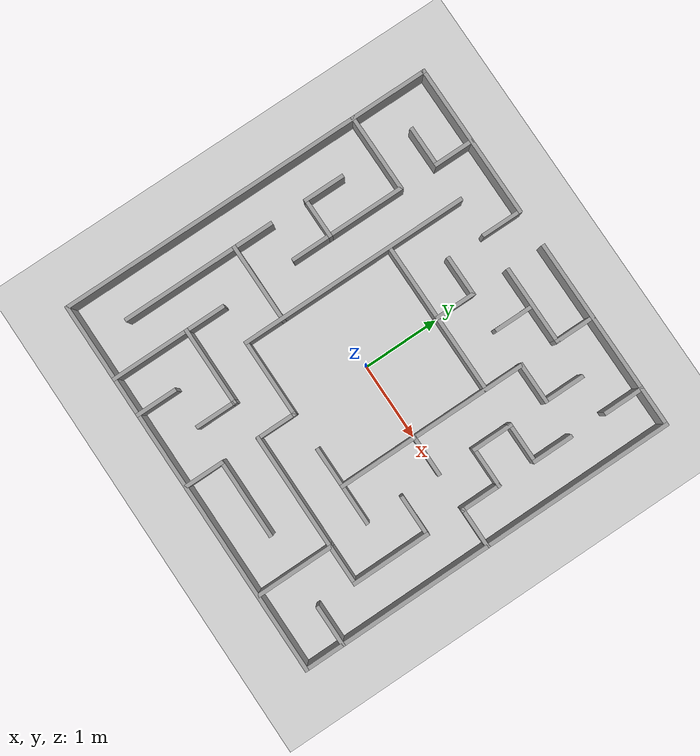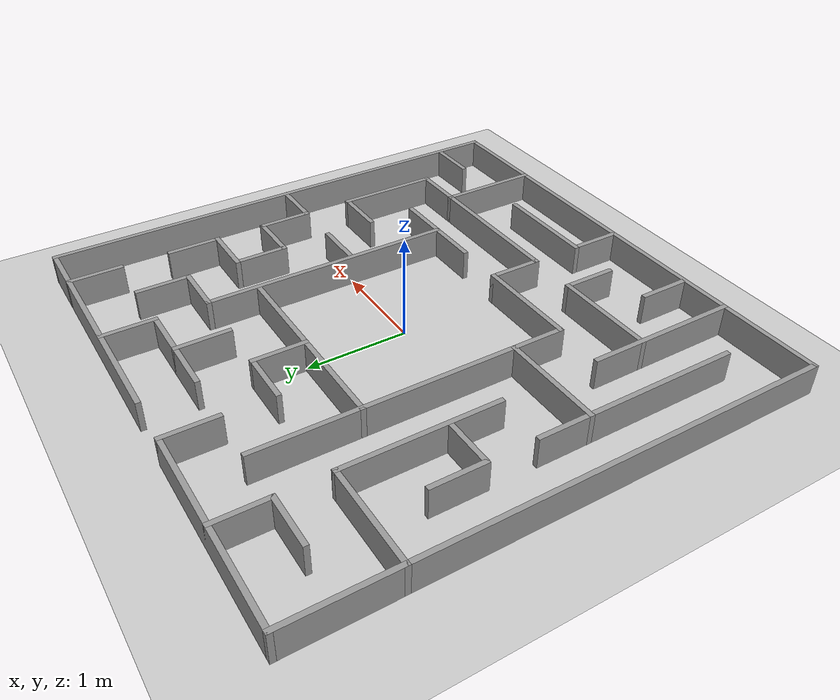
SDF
<sdf version="1.4">
  <world name="default">

    <scene>
      <ambient>0.4 0.4 0.4 1</ambient>
      <background>0.7 0.7 0.7 1</background>
      <shadows>true</shadows>
    </scene>

    <!-- A global light source -->
    <include>
      <uri>model://sun</uri>
    </include>

    <!-- A ground plane -->
    <include>
      <uri>model://ground_plane</uri>
    </include>

    <!-- Maze 2 v1 -->
    <include>
      <uri>model://turtlebot3_maze_2</uri>
    </include>

    <physics type="ode">
      <real_time_update_rate>1000.0</real_time_update_rate>
      <max_step_size>0.001</max_step_size>
      <real_time_factor>1</real_time_factor>
      <ode>
        <solver>
          <type>quick</type>
          <iters>150</iters>
          <precon_iters>0</precon_iters>
          <sor>1.400000</sor>
          <use_dynamic_moi_rescaling>1</use_dynamic_moi_rescaling>
        </solver>
        <constraints>
          <cfm>0.00001</cfm>
          <erp>0.2</erp>
          <contact_max_correcting_vel>2000.000000</contact_max_correcting_vel>
          <contact_surface_layer>0.01000</contact_surface_layer>
        </constraints>
      </ode>
    </physics>
  </world>

</sdf>

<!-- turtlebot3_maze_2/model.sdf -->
<sdf version='1.7'>
  <model name='turtlebot3_maze_2'>
    <pose>0 0 0 0 -0 0</pose>
    <link name='Wall_101'>
      <collision name='Wall_101_Collision'>
        <geometry>
          <box>
            <size>0.55 0.05 0.3</size>
          </box>
        </geometry>
        <pose>0 0 0.15 0 -0 0</pose>
      </collision>
      <visual name='Wall_101_Visual'>
        <pose>0 0 0.15 0 -0 0</pose>
        <geometry>
          <box>
            <size>0.55 0.05 0.3</size>
          </box>
        </geometry>
        <material>
          <script>
            <uri>file://media/materials/scripts/gazebo.material</uri>
            <name>Gazebo/Grey</name>
          </script>
          <ambient>1 1 1 1</ambient>
        </material>
        <meta>
          <layer>0</layer>
        </meta>
      </visual>
      <pose>2.25 -2 0 0 -0 0</pose>
    </link>
    <link name='Wall_103'>
      <collision name='Wall_103_Collision'>
        <geometry>
          <box>
            <size>1.05 0.05 0.3</size>
          </box>
        </geometry>
        <pose>0 0 0.15 0 -0 0</pose>
      </collision>
      <visual name='Wall_103_Visual'>
        <pose>0 0 0.15 0 -0 0</pose>
        <geometry>
          <box>
            <size>1.05 0.05 0.3</size>
          </box>
        </geometry>
        <material>
          <script>
            <uri>file://media/materials/scripts/gazebo.material</uri>
            <name>Gazebo/Grey</name>
          </script>
          <ambient>1 1 1 1</ambient>
        </material>
        <meta>
          <layer>0</layer>
        </meta>
      </visual>
      <pose>1.5 -2 0 0 -0 -1.5708</pose>
    </link>
    <link name='Wall_105'>
      <collision name='Wall_105_Collision'>
        <geometry>
          <box>
            <size>1.05 0.05 0.3</size>
          </box>
        </geometry>
        <pose>0 0 0.15 0 -0 0</pose>
      </collision>
      <visual name='Wall_105_Visual'>
        <pose>0 0 0.15 0 -0 0</pose>
        <geometry>
          <box>
            <size>1.05 0.05 0.3</size>
          </box>
        </geometry>
        <material>
          <script>
            <uri>file://media/materials/scripts/gazebo.material</uri>
            <name>Gazebo/Grey</name>
          </script>
          <ambient>1 1 1 1</ambient>
        </material>
        <meta>
          <layer>0</layer>
        </meta>
      </visual>
      <pose>0.5 -2 0 0 -0 3.14159</pose>
    </link>
    <link name='Wall_106'>
      <collision name='Wall_106_Collision'>
        <geometry>
          <box>
            <size>0.55 0.05 0.3</size>
          </box>
        </geometry>
        <pose>0 0 0.15 0 -0 0</pose>
      </collision>
      <visual name='Wall_106_Visual'>
        <pose>0 0 0.15 0 -0 0</pose>
        <geometry>
          <box>
            <size>0.55 0.05 0.3</size>
          </box>
        </geometry>
        <material>
          <script>
            <uri>file://media/materials/scripts/gazebo.material</uri>
            <name>Gazebo/Grey</name>
          </script>
          <ambient>1 1 1 1</ambient>
        </material>
        <meta>
          <layer>0</layer>
        </meta>
      </visual>
      <pose>0 -2.25 0 0 -0 -1.5708</pose>
    </link>
    <link name='Wall_108'>
      <collision name='Wall_108_Collision'>
        <geometry>
          <box>
            <size>0.55 0.05 0.3</size>
          </box>
        </geometry>
        <pose>0 0 0.15 0 -0 0</pose>
      </collision>
      <visual name='Wall_108_Visual'>
        <pose>0 0 0.15 0 -0 0</pose>
        <geometry>
          <box>
            <size>0.55 0.05 0.3</size>
          </box>
        </geometry>
        <material>
          <script>
            <uri>file://media/materials/scripts/gazebo.material</uri>
            <name>Gazebo/Grey</name>
          </script>
          <ambient>1 1 1 1</ambient>
        </material>
        <meta>
          <layer>0</layer>
        </meta>
      </visual>
      <pose>-1 -2.25 0 0 -0 -1.5708</pose>
    </link>
    <link name='Wall_110'>
      <collision name='Wall_110_Collision'>
        <geometry>
          <box>
            <size>0.55 0.05 0.3</size>
          </box>
        </geometry>
        <pose>0 0 0.15 0 -0 0</pose>
      </collision>
      <visual name='Wall_110_Visual'>
        <pose>0 0 0.15 0 -0 0</pose>
        <geometry>
          <box>
            <size>0.55 0.05 0.3</size>
          </box>
        </geometry>
        <material>
          <script>
            <uri>file://media/materials/scripts/gazebo.material</uri>
            <name>Gazebo/Grey</name>
          </script>
          <ambient>1 1 1 1</ambient>
        </material>
        <meta>
          <layer>0</layer>
        </meta>
      </visual>
      <pose>-0.5 -1.75 0 0 -0 1.5708</pose>
    </link>
    <link name='Wall_111'>
      <collision name='Wall_111_Collision'>
        <geometry>
          <box>
            <size>1.05 0.05 0.3</size>
          </box>
        </geometry>
        <pose>0 0 0.15 0 -0 0</pose>
      </collision>
      <visual name='Wall_111_Visual'>
        <pose>0 0 0.15 0 -0 0</pose>
        <geometry>
          <box>
            <size>1.05 0.05 0.3</size>
          </box>
        </geometry>
        <material>
          <script>
            <uri>file://media/materials/scripts/gazebo.material</uri>
            <name>Gazebo/Grey</name>
          </script>
          <ambient>1 1 1 1</ambient>
        </material>
        <meta>
          <layer>0</layer>
        </meta>
      </visual>
      <pose>-1 -1.5 0 0 -0 3.14159</pose>
    </link>
    <link name='Wall_113'>
      <collision name='Wall_113_Collision'>
        <geometry>
          <box>
            <size>1.55 0.05 0.3</size>
          </box>
        </geometry>
        <pose>0 0 0.15 0 -0 0</pose>
      </collision>
      <visual name='Wall_113_Visual'>
        <pose>0 0 0.15 0 -0 0</pose>
        <geometry>
          <box>
            <size>1.55 0.05 0.3</size>
          </box>
        </geometry>
        <material>
          <script>
            <uri>file://media/materials/scripts/gazebo.material</uri>
            <name>Gazebo/Grey</name>
          </script>
          <ambient>1 1 1 1</ambient>
        </material>
        <meta>
          <layer>0</layer>
        </meta>
      </visual>
      <pose>-1.5 -1.75 0 0 -0 -1.5708</pose>
    </link>
    <link name='Wall_115'>
      <collision name='Wall_115_Collision'>
        <geometry>
          <box>
            <size>2.05 0.05 0.3</size>
          </box>
        </geometry>
        <pose>0 0 0.15 0 -0 0</pose>
      </collision>
      <visual name='Wall_115_Visual'>
        <pose>0 0 0.15 0 -0 0</pose>
        <geometry>
          <box>
            <size>2.05 0.05 0.3</size>
          </box>
        </geometry>
        <material>
          <script>
            <uri>file://media/materials/scripts/gazebo.material</uri>
            <name>Gazebo/Grey</name>
          </script>
          <ambient>1 1 1 1</ambient>
        </material>
        <meta>
          <layer>0</layer>
        </meta>
      </visual>
      <pose>-2 -1 0 0 -0 -1.5708</pose>
    </link>
    <link name='Wall_117'>
      <collision name='Wall_117_Collision'>
        <geometry>
          <box>
            <size>1.05 0.05 0.3</size>
          </box>
        </geometry>
        <pose>0 0 0.15 0 -0 0</pose>
      </collision>
      <visual name='Wall_117_Visual'>
        <pose>0 0 0.15 0 -0 0</pose>
        <geometry>
          <box>
            <size>1.05 0.05 0.3</size>
          </box>
        </geometry>
        <material>
          <script>
            <uri>file://media/materials/scripts/gazebo.material</uri>
            <name>Gazebo/Grey</name>
          </script>
          <ambient>1 1 1 1</ambient>
        </material>
        <meta>
          <layer>0</layer>
        </meta>
      </visual>
      <pose>-2 1.5 0 0 -0 0</pose>
    </link>
    <link name='Wall_118'>
      <collision name='Wall_118_Collision'>
        <geometry>
          <box>
            <size>1.55 0.05 0.3</size>
          </box>
        </geometry>
        <pose>0 0 0.15 0 -0 0</pose>
      </collision>
      <visual name='Wall_118_Visual'>
        <pose>0 0 0.15 0 -0 0</pose>
        <geometry>
          <box>
            <size>1.55 0.05 0.3</size>
          </box>
        </geometry>
        <material>
          <script>
            <uri>file://media/materials/scripts/gazebo.material</uri>
            <name>Gazebo/Grey</name>
          </script>
          <ambient>1 1 1 1</ambient>
        </material>
        <meta>
          <layer>0</layer>
        </meta>
      </visual>
      <pose>-1.5 0.75 0 0 -0 -1.5708</pose>
    </link>
    <link name='Wall_120'>
      <collision name='Wall_120_Collision'>
        <geometry>
          <box>
            <size>0.55 0.05 0.3</size>
          </box>
        </geometry>
        <pose>0 0 0.15 0 -0 0</pose>
      </collision>
      <visual name='Wall_120_Visual'>
        <pose>0 0 0.15 0 -0 0</pose>
        <geometry>
          <box>
            <size>0.55 0.05 0.3</size>
          </box>
        </geometry>
        <material>
          <script>
            <uri>file://media/materials/scripts/gazebo.material</uri>
            <name>Gazebo/Grey</name>
          </script>
          <ambient>1 1 1 1</ambient>
        </material>
        <meta>
          <layer>0</layer>
        </meta>
      </visual>
      <pose>-2 0.75 0 0 -0 -1.5708</pose>
    </link>
    <link name='Wall_121'>
      <collision name='Wall_121_Collision'>
        <geometry>
          <box>
            <size>0.55 0.05 0.3</size>
          </box>
        </geometry>
        <pose>0 0 0.15 0 -0 0</pose>
      </collision>
      <visual name='Wall_121_Visual'>
        <pose>0 0 0.15 0 -0 0</pose>
        <geometry>
          <box>
            <size>0.55 0.05 0.3</size>
          </box>
        </geometry>
        <material>
          <script>
            <uri>file://media/materials/scripts/gazebo.material</uri>
            <name>Gazebo/Grey</name>
          </script>
          <ambient>1 1 1 1</ambient>
        </material>
        <meta>
          <layer>0</layer>
        </meta>
      </visual>
      <pose>-1.75 0.5 0 0 -0 0</pose>
    </link>
    <link name='Wall_123'>
      <collision name='Wall_123_Collision'>
        <geometry>
          <box>
            <size>1.05 0.05 0.3</size>
          </box>
        </geometry>
        <pose>0 0 0.15 0 -0 0</pose>
      </collision>
      <visual name='Wall_123_Visual'>
        <pose>0 0 0.15 0 -0 0</pose>
        <geometry>
          <box>
            <size>1.05 0.05 0.3</size>
          </box>
        </geometry>
        <material>
          <script>
            <uri>file://media/materials/scripts/gazebo.material</uri>
            <name>Gazebo/Grey</name>
          </script>
          <ambient>1 1 1 1</ambient>
        </material>
        <meta>
          <layer>0</layer>
        </meta>
      </visual>
      <pose>0.5 2 0 0 -0 0</pose>
    </link>
    <link name='Wall_124'>
      <collision name='Wall_124_Collision'>
        <geometry>
          <box>
            <size>0.55 0.05 0.3</size>
          </box>
        </geometry>
        <pose>0 0 0.15 0 -0 0</pose>
      </collision>
      <visual name='Wall_124_Visual'>
        <pose>0 0 0.15 0 -0 0</pose>
        <geometry>
          <box>
            <size>0.55 0.05 0.3</size>
          </box>
        </geometry>
        <material>
          <script>
            <uri>file://media/materials/scripts/gazebo.material</uri>
            <name>Gazebo/Grey</name>
          </script>
          <ambient>1 1 1 1</ambient>
        </material>
        <meta>
          <layer>0</layer>
        </meta>
      </visual>
      <pose>1 2.25 0 0 -0 1.5708</pose>
    </link>
    <link name='Wall_126'>
      <collision name='Wall_126_Collision'>
        <geometry>
          <box>
            <size>0.55 0.05 0.3</size>
          </box>
        </geometry>
        <pose>0 0 0.15 0 -0 0</pose>
      </collision>
      <visual name='Wall_126_Visual'>
        <pose>0 0 0.15 0 -0 0</pose>
        <geometry>
          <box>
            <size>0.55 0.05 0.3</size>
          </box>
        </geometry>
        <material>
          <script>
            <uri>file://media/materials/scripts/gazebo.material</uri>
            <name>Gazebo/Grey</name>
          </script>
          <ambient>1 1 1 1</ambient>
        </material>
        <meta>
          <layer>0</layer>
        </meta>
      </visual>
      <pose>0.5 1.75 0 0 -0 1.5708</pose>
    </link>
    <link name='Wall_128'>
      <collision name='Wall_128_Collision'>
        <geometry>
          <box>
            <size>1.05 0.05 0.3</size>
          </box>
        </geometry>
        <pose>0 0 0.15 0 -0 0</pose>
      </collision>
      <visual name='Wall_128_Visual'>
        <pose>0 0 0.15 0 -0 0</pose>
        <geometry>
          <box>
            <size>1.05 0.05 0.3</size>
          </box>
        </geometry>
        <material>
          <script>
            <uri>file://media/materials/scripts/gazebo.material</uri>
            <name>Gazebo/Grey</name>
          </script>
          <ambient>1 1 1 1</ambient>
        </material>
        <meta>
          <layer>0</layer>
        </meta>
      </visual>
      <pose>-1.5 -0.5 0 0 -0 0</pose>
    </link>
    <link name='Wall_131'>
      <collision name='Wall_131_Collision'>
        <geometry>
          <box>
            <size>0.55 0.05 0.3</size>
          </box>
        </geometry>
        <pose>0 0 0.15 0 -0 0</pose>
      </collision>
      <visual name='Wall_131_Visual'>
        <pose>0 0 0.15 0 -0 0</pose>
        <geometry>
          <box>
            <size>0.55 0.05 0.3</size>
          </box>
        </geometry>
        <material>
          <script>
            <uri>file://media/materials/scripts/gazebo.material</uri>
            <name>Gazebo/Grey</name>
          </script>
          <ambient>1 1 1 1</ambient>
        </material>
        <meta>
          <layer>0</layer>
        </meta>
      </visual>
      <pose>-1.75 2 0 0 -0 0</pose>
    </link>
    <link name='Wall_132'>
      <collision name='Wall_132_Collision'>
        <geometry>
          <box>
            <size>0.55 0.05 0.3</size>
          </box>
        </geometry>
        <pose>0 0 0.15 0 -0 0</pose>
      </collision>
      <visual name='Wall_132_Visual'>
        <pose>0 0 0.15 0 -0 0</pose>
        <geometry>
          <box>
            <size>0.55 0.05 0.3</size>
          </box>
        </geometry>
        <material>
          <script>
            <uri>file://media/materials/scripts/gazebo.material</uri>
            <name>Gazebo/Grey</name>
          </script>
          <ambient>1 1 1 1</ambient>
        </material>
        <meta>
          <layer>0</layer>
        </meta>
      </visual>
      <pose>-1.5 2.25 0 0 -0 1.5708</pose>
    </link>
    <link name='Wall_63'>
      <collision name='Wall_63_Collision'>
        <geometry>
          <box>
            <size>2.05 0.05 0.3</size>
          </box>
        </geometry>
        <pose>0 0 0.15 0 -0 0</pose>
      </collision>
      <visual name='Wall_63_Visual'>
        <pose>0 0 0.15 0 -0 0</pose>
        <geometry>
          <box>
            <size>2.05 0.05 0.3</size>
          </box>
        </geometry>
        <material>
          <script>
            <uri>file://media/materials/scripts/gazebo.material</uri>
            <name>Gazebo/Grey</name>
          </script>
          <ambient>1 1 1 1</ambient>
        </material>
        <meta>
          <layer>0</layer>
        </meta>
      </visual>
      <pose>0 1 0 0 -0 0</pose>
    </link>
    <link name='Wall_65'>
      <collision name='Wall_65_Collision'>
        <geometry>
          <box>
            <size>0.55 0.05 0.3</size>
          </box>
        </geometry>
        <pose>0 0 0.15 0 -0 0</pose>
      </collision>
      <visual name='Wall_65_Visual'>
        <pose>0 0 0.15 0 -0 0</pose>
        <geometry>
          <box>
            <size>0.55 0.05 0.3</size>
          </box>
        </geometry>
        <material>
          <script>
            <uri>file://media/materials/scripts/gazebo.material</uri>
            <name>Gazebo/Grey</name>
          </script>
          <ambient>1 1 1 1</ambient>
        </material>
        <meta>
          <layer>0</layer>
        </meta>
      </visual>
      <pose>0 1.25 0 0 -0 1.5708</pose>
    </link>
    <link name='Wall_67'>
      <collision name='Wall_67_Collision'>
        <geometry>
          <box>
            <size>0.55 0.05 0.3</size>
          </box>
        </geometry>
        <pose>0 0 0.15 0 -0 0</pose>
      </collision>
      <visual name='Wall_67_Visual'>
        <pose>0 0 0.15 0 -0 0</pose>
        <geometry>
          <box>
            <size>0.55 0.05 0.3</size>
          </box>
        </geometry>
        <material>
          <script>
            <uri>file://media/materials/scripts/gazebo.material</uri>
            <name>Gazebo/Grey</name>
          </script>
          <ambient>1 1 1 1</ambient>
        </material>
        <meta>
          <layer>0</layer>
        </meta>
      </visual>
      <pose>-0.25 1.5 0 0 -0 3.14159</pose>
    </link>
    <link name='Wall_69'>
      <collision name='Wall_69_Collision'>
        <geometry>
          <box>
            <size>5.05 0.05 0.3</size>
          </box>
        </geometry>
        <pose>0 0 0.15 0 -0 0</pose>
      </collision>
      <visual name='Wall_69_Visual'>
        <pose>0 0 0.15 0 -0 0</pose>
        <geometry>
          <box>
            <size>5.05 0.05 0.3</size>
          </box>
        </geometry>
        <material>
          <script>
            <uri>file://media/materials/scripts/gazebo.material</uri>
            <name>Gazebo/Grey</name>
          </script>
          <ambient>1 1 1 1</ambient>
        </material>
        <meta>
          <layer>0</layer>
        </meta>
      </visual>
      <pose>-2.5 0 0 0 -0 -1.5708</pose>
    </link>
    <link name='Wall_70'>
      <collision name='Wall_70_Collision'>
        <geometry>
          <box>
            <size>5.05 0.05 0.3</size>
          </box>
        </geometry>
        <pose>0 0 0.15 0 -0 0</pose>
      </collision>
      <visual name='Wall_70_Visual'>
        <pose>0 0 0.15 0 -0 0</pose>
        <geometry>
          <box>
            <size>5.05 0.05 0.3</size>
          </box>
        </geometry>
        <material>
          <script>
            <uri>file://media/materials/scripts/gazebo.material</uri>
            <name>Gazebo/Grey</name>
          </script>
          <ambient>1 1 1 1</ambient>
        </material>
        <meta>
          <layer>0</layer>
        </meta>
      </visual>
      <pose>0 -2.5 0 0 -0 0</pose>
    </link>
    <link name='Wall_71'>
      <collision name='Wall_71_Collision'>
        <geometry>
          <box>
            <size>5.05 0.05 0.3</size>
          </box>
        </geometry>
        <pose>0 0 0.15 0 -0 0</pose>
      </collision>
      <visual name='Wall_71_Visual'>
        <pose>0 0 0.15 0 -0 0</pose>
        <geometry>
          <box>
            <size>5.05 0.05 0.3</size>
          </box>
        </geometry>
        <material>
          <script>
            <uri>file://media/materials/scripts/gazebo.material</uri>
            <name>Gazebo/Grey</name>
          </script>
          <ambient>1 1 1 1</ambient>
        </material>
        <meta>
          <layer>0</layer>
        </meta>
      </visual>
      <pose>2.5 0 0 0 -0 1.5708</pose>
    </link>
    <link name='Wall_72'>
      <collision name='Wall_72_Collision'>
        <geometry>
          <box>
            <size>2.55 0.05 0.3</size>
          </box>
        </geometry>
        <pose>0 0 0.15 0 -0 0</pose>
      </collision>
      <visual name='Wall_72_Visual'>
        <pose>0 0 0.15 0 -0 0</pose>
        <geometry>
          <box>
            <size>2.55 0.05 0.3</size>
          </box>
        </geometry>
        <material>
          <script>
            <uri>file://media/materials/scripts/gazebo.material</uri>
            <name>Gazebo/Grey</name>
          </script>
          <ambient>1 1 1 1</ambient>
        </material>
        <meta>
          <layer>0</layer>
        </meta>
      </visual>
      <pose>1.25 2.5 0 0 -0 3.14159</pose>
    </link>
    <link name='Wall_74'>
      <collision name='Wall_74_Collision'>
        <geometry>
          <box>
            <size>2.05 0.05 0.3</size>
          </box>
        </geometry>
        <pose>0 0 0.15 0 -0 0</pose>
      </collision>
      <visual name='Wall_74_Visual'>
        <pose>0 0 0.15 0 -0 0</pose>
        <geometry>
          <box>
            <size>2.05 0.05 0.3</size>
          </box>
        </geometry>
        <material>
          <script>
            <uri>file://media/materials/scripts/gazebo.material</uri>
            <name>Gazebo/Grey</name>
          </script>
          <ambient>1 1 1 1</ambient>
        </material>
        <meta>
          <layer>0</layer>
        </meta>
      </visual>
      <pose>-1.5 2.5 0 0 -0 0</pose>
    </link>
    <link name='Wall_75'>
      <collision name='Wall_75_Collision'>
        <geometry>
          <box>
            <size>0.55 0.05 0.3</size>
          </box>
        </geometry>
        <pose>0 0 0.15 0 -0 0</pose>
      </collision>
      <visual name='Wall_75_Visual'>
        <pose>0 0 0.15 0 -0 0</pose>
        <geometry>
          <box>
            <size>0.55 0.05 0.3</size>
          </box>
        </geometry>
        <material>
          <script>
            <uri>file://media/materials/scripts/gazebo.material</uri>
            <name>Gazebo/Grey</name>
          </script>
          <ambient>1 1 1 1</ambient>
        </material>
        <meta>
          <layer>0</layer>
        </meta>
      </visual>
      <pose>-0.5 2.25 0 0 -0 -1.5708</pose>
    </link>
    <link name='Wall_77'>
      <collision name='Wall_77_Collision'>
        <geometry>
          <box>
            <size>3.05 0.05 0.3</size>
          </box>
        </geometry>
        <pose>0 0 0.15 0 -0 0</pose>
      </collision>
      <visual name='Wall_77_Visual'>
        <pose>0 0 0.15 0 -0 0</pose>
        <geometry>
          <box>
            <size>3.05 0.05 0.3</size>
          </box>
        </geometry>
        <material>
          <script>
            <uri>file://media/materials/scripts/gazebo.material</uri>
            <name>Gazebo/Grey</name>
          </script>
          <ambient>1 1 1 1</ambient>
        </material>
        <meta>
          <layer>0</layer>
        </meta>
      </visual>
      <pose>-1 0.5 0 0 -0 -1.5708</pose>
    </link>
    <link name='Wall_78'>
      <collision name='Wall_78_Collision'>
        <geometry>
          <box>
            <size>1.05 0.05 0.3</size>
          </box>
        </geometry>
        <pose>0 0 0.15 0 -0 0</pose>
      </collision>
      <visual name='Wall_78_Visual'>
        <pose>0 0 0.15 0 -0 0</pose>
        <geometry>
          <box>
            <size>1.05 0.05 0.3</size>
          </box>
        </geometry>
        <material>
          <script>
            <uri>file://media/materials/scripts/gazebo.material</uri>
            <name>Gazebo/Grey</name>
          </script>
          <ambient>1 1 1 1</ambient>
        </material>
        <meta>
          <layer>0</layer>
        </meta>
      </visual>
      <pose>-0.5 -1 0 0 -0 0</pose>
    </link>
    <link name='Wall_79'>
      <collision name='Wall_79_Collision'>
        <geometry>
          <box>
            <size>0.55 0.05 0.3</size>
          </box>
        </geometry>
        <pose>0 0 0.15 0 -0 0</pose>
      </collision>
      <visual name='Wall_79_Visual'>
        <pose>0 0 0.15 0 -0 0</pose>
        <geometry>
          <box>
            <size>0.55 0.05 0.3</size>
          </box>
        </geometry>
        <material>
          <script>
            <uri>file://media/materials/scripts/gazebo.material</uri>
            <name>Gazebo/Grey</name>
          </script>
          <ambient>1 1 1 1</ambient>
        </material>
        <meta>
          <layer>0</layer>
        </meta>
      </visual>
      <pose>0 -1.25 0 0 -0 -1.5708</pose>
    </link>
    <link name='Wall_80'>
      <collision name='Wall_80_Collision'>
        <geometry>
          <box>
            <size>2.05 0.05 0.3</size>
          </box>
        </geometry>
        <pose>0 0 0.15 0 -0 0</pose>
      </collision>
      <visual name='Wall_80_Visual'>
        <pose>0 0 0.15 0 -0 0</pose>
        <geometry>
          <box>
            <size>2.05 0.05 0.3</size>
          </box>
        </geometry>
        <material>
          <script>
            <uri>file://media/materials/scripts/gazebo.material</uri>
            <name>Gazebo/Grey</name>
          </script>
          <ambient>1 1 1 1</ambient>
        </material>
        <meta>
          <layer>0</layer>
        </meta>
      </visual>
      <pose>1 -1.5 0 0 -0 0</pose>
    </link>
    <link name='Wall_81'>
      <collision name='Wall_81_Collision'>
        <geometry>
          <box>
            <size>1.05 0.05 0.3</size>
          </box>
        </geometry>
        <pose>0 0 0.15 0 -0 0</pose>
      </collision>
      <visual name='Wall_81_Visual'>
        <pose>0 0 0.15 0 -0 0</pose>
        <geometry>
          <box>
            <size>1.05 0.05 0.3</size>
          </box>
        </geometry>
        <material>
          <script>
            <uri>file://media/materials/scripts/gazebo.material</uri>
            <name>Gazebo/Grey</name>
          </script>
          <ambient>1 1 1 1</ambient>
        </material>
        <meta>
          <layer>0</layer>
        </meta>
      </visual>
      <pose>2 -1 0 0 -0 1.5708</pose>
    </link>
    <link name='Wall_82'>
      <collision name='Wall_82_Collision'>
        <geometry>
          <box>
            <size>0.55 0.05 0.3</size>
          </box>
        </geometry>
        <pose>0 0 0.15 0 -0 0</pose>
      </collision>
      <visual name='Wall_82_Visual'>
        <pose>0 0 0.15 0 -0 0</pose>
        <geometry>
          <box>
            <size>0.55 0.05 0.3</size>
          </box>
        </geometry>
        <material>
          <script>
            <uri>file://media/materials/scripts/gazebo.material</uri>
            <name>Gazebo/Grey</name>
          </script>
          <ambient>1 1 1 1</ambient>
        </material>
        <meta>
          <layer>0</layer>
        </meta>
      </visual>
      <pose>1.75 -0.5 0 0 -0 3.14159</pose>
    </link>
    <link name='Wall_84'>
      <collision name='Wall_84_Collision'>
        <geometry>
          <box>
            <size>0.55 0.05 0.3</size>
          </box>
        </geometry>
        <pose>0 0 0.15 0 -0 0</pose>
      </collision>
      <visual name='Wall_84_Visual'>
        <pose>0 0 0.15 0 -0 0</pose>
        <geometry>
          <box>
            <size>0.55 0.05 0.3</size>
          </box>
        </geometry>
        <material>
          <script>
            <uri>file://media/materials/scripts/gazebo.material</uri>
            <name>Gazebo/Grey</name>
          </script>
          <ambient>1 1 1 1</ambient>
        </material>
        <meta>
          <layer>0</layer>
        </meta>
      </visual>
      <pose>1.5 1.75 0 0 -0 -1.5708</pose>
    </link>
    <link name='Wall_85'>
      <collision name='Wall_85_Collision'>
        <geometry>
          <box>
            <size>0.55 0.05 0.3</size>
          </box>
        </geometry>
        <pose>0 0 0.15 0 -0 0</pose>
      </collision>
      <visual name='Wall_85_Visual'>
        <pose>0 0 0.15 0 -0 0</pose>
        <geometry>
          <box>
            <size>0.55 0.05 0.3</size>
          </box>
        </geometry>
        <material>
          <script>
            <uri>file://media/materials/scripts/gazebo.material</uri>
            <name>Gazebo/Grey</name>
          </script>
          <ambient>1 1 1 1</ambient>
        </material>
        <meta>
          <layer>0</layer>
        </meta>
      </visual>
      <pose>1.25 1.5 0 0 -0 3.14159</pose>
    </link>
    <link name='Wall_86'>
      <collision name='Wall_86_Collision'>
        <geometry>
          <box>
            <size>2.55 0.05 0.3</size>
          </box>
        </geometry>
        <pose>0 0 0.15 0 -0 0</pose>
      </collision>
      <visual name='Wall_86_Visual'>
        <pose>0 0 0.15 0 -0 0</pose>
        <geometry>
          <box>
            <size>2.55 0.05 0.3</size>
          </box>
        </geometry>
        <material>
          <script>
            <uri>file://media/materials/scripts/gazebo.material</uri>
            <name>Gazebo/Grey</name>
          </script>
          <ambient>1 1 1 1</ambient>
        </material>
        <meta>
          <layer>0</layer>
        </meta>
      </visual>
      <pose>1 0.25 0 0 -0 -1.5708</pose>
    </link>
    <link name='Wall_88'>
      <collision name='Wall_88_Collision'>
        <geometry>
          <box>
            <size>0.55 0.05 0.3</size>
          </box>
        </geometry>
        <pose>0 0 0.15 0 -0 0</pose>
      </collision>
      <visual name='Wall_88_Visual'>
        <pose>0 0 0.15 0 -0 0</pose>
        <geometry>
          <box>
            <size>0.55 0.05 0.3</size>
          </box>
        </geometry>
        <material>
          <script>
            <uri>file://media/materials/scripts/gazebo.material</uri>
            <name>Gazebo/Grey</name>
          </script>
          <ambient>1 1 1 1</ambient>
        </material>
        <meta>
          <layer>0</layer>
        </meta>
      </visual>
      <pose>1.25 0 0 0 -0 0</pose>
    </link>
    <link name='Wall_90'>
      <collision name='Wall_90_Collision'>
        <geometry>
          <box>
            <size>1.05 0.05 0.3</size>
          </box>
        </geometry>
        <pose>0 0 0.15 0 -0 0</pose>
      </collision>
      <visual name='Wall_90_Visual'>
        <pose>0 0 0.15 0 -0 0</pose>
        <geometry>
          <box>
            <size>1.05 0.05 0.3</size>
          </box>
        </geometry>
        <material>
          <script>
            <uri>file://media/materials/scripts/gazebo.material</uri>
            <name>Gazebo/Grey</name>
          </script>
          <ambient>1 1 1 1</ambient>
        </material>
        <meta>
          <layer>0</layer>
        </meta>
      </visual>
      <pose>1 -1 0 0 -0 0</pose>
    </link>
    <link name='Wall_92'>
      <collision name='Wall_92_Collision'>
        <geometry>
          <box>
            <size>0.55 0.05 0.3</size>
          </box>
        </geometry>
        <pose>0 0 0.15 0 -0 0</pose>
      </collision>
      <visual name='Wall_92_Visual'>
        <pose>0 0 0.15 0 -0 0</pose>
        <geometry>
          <box>
            <size>0.55 0.05 0.3</size>
          </box>
        </geometry>
        <material>
          <script>
            <uri>file://media/materials/scripts/gazebo.material</uri>
            <name>Gazebo/Grey</name>
          </script>
          <ambient>1 1 1 1</ambient>
        </material>
        <meta>
          <layer>0</layer>
        </meta>
      </visual>
      <pose>2 2.25 0 0 -0 -1.5708</pose>
    </link>
    <link name='Wall_94'>
      <collision name='Wall_94_Collision'>
        <geometry>
          <box>
            <size>0.55 0.05 0.3</size>
          </box>
        </geometry>
        <pose>0 0 0.15 0 -0 0</pose>
      </collision>
      <visual name='Wall_94_Visual'>
        <pose>0 0 0.15 0 -0 0</pose>
        <geometry>
          <box>
            <size>0.55 0.05 0.3</size>
          </box>
        </geometry>
        <material>
          <script>
            <uri>file://media/materials/scripts/gazebo.material</uri>
            <name>Gazebo/Grey</name>
          </script>
          <ambient>1 1 1 1</ambient>
        </material>
        <meta>
          <layer>0</layer>
        </meta>
      </visual>
      <pose>2 1.25 0 0 -0 -1.5708</pose>
    </link>
    <link name='Wall_95'>
      <collision name='Wall_95_Collision'>
        <geometry>
          <box>
            <size>0.55 0.05 0.3</size>
          </box>
        </geometry>
        <pose>0 0 0.15 0 -0 0</pose>
      </collision>
      <visual name='Wall_95_Visual'>
        <pose>0 0 0.15 0 -0 0</pose>
        <geometry>
          <box>
            <size>0.55 0.05 0.3</size>
          </box>
        </geometry>
        <material>
          <script>
            <uri>file://media/materials/scripts/gazebo.material</uri>
            <name>Gazebo/Grey</name>
          </script>
          <ambient>1 1 1 1</ambient>
        </material>
        <meta>
          <layer>0</layer>
        </meta>
      </visual>
      <pose>1.75 1 0 0 -0 3.14159</pose>
    </link>
    <link name='Wall_96'>
      <collision name='Wall_96_Collision'>
        <geometry>
          <box>
            <size>0.55 0.05 0.3</size>
          </box>
        </geometry>
        <pose>0 0 0.15 0 -0 0</pose>
      </collision>
      <visual name='Wall_96_Visual'>
        <pose>0 0 0.15 0 -0 0</pose>
        <geometry>
          <box>
            <size>0.55 0.05 0.3</size>
          </box>
        </geometry>
        <material>
          <script>
            <uri>file://media/materials/scripts/gazebo.material</uri>
            <name>Gazebo/Grey</name>
          </script>
          <ambient>1 1 1 1</ambient>
        </material>
        <meta>
          <layer>0</layer>
        </meta>
      </visual>
      <pose>1.5 0.75 0 0 -0 -1.5708</pose>
    </link>
    <link name='Wall_97'>
      <collision name='Wall_97_Collision'>
        <geometry>
          <box>
            <size>0.55 0.05 0.3</size>
          </box>
        </geometry>
        <pose>0 0 0.15 0 -0 0</pose>
      </collision>
      <visual name='Wall_97_Visual'>
        <pose>0 0 0.15 0 -0 0</pose>
        <geometry>
          <box>
            <size>0.55 0.05 0.3</size>
          </box>
        </geometry>
        <material>
          <script>
            <uri>file://media/materials/scripts/gazebo.material</uri>
            <name>Gazebo/Grey</name>
          </script>
          <ambient>1 1 1 1</ambient>
        </material>
        <meta>
          <layer>0</layer>
        </meta>
      </visual>
      <pose>1.75 0.5 0 0 -0 0</pose>
    </link>
    <link name='Wall_98'>
      <collision name='Wall_98_Collision'>
        <geometry>
          <box>
            <size>0.55 0.05 0.3</size>
          </box>
        </geometry>
        <pose>0 0 0.15 0 -0 0</pose>
      </collision>
      <visual name='Wall_98_Visual'>
        <pose>0 0 0.15 0 -0 0</pose>
        <geometry>
          <box>
            <size>0.55 0.05 0.3</size>
          </box>
        </geometry>
        <material>
          <script>
            <uri>file://media/materials/scripts/gazebo.material</uri>
            <name>Gazebo/Grey</name>
          </script>
          <ambient>1 1 1 1</ambient>
        </material>
        <meta>
          <layer>0</layer>
        </meta>
      </visual>
      <pose>2 0.25 0 0 -0 -1.5708</pose>
    </link>
    <link name='Wall_99'>
      <collision name='Wall_99_Collision'>
        <geometry>
          <box>
            <size>0.55 0.05 0.3</size>
          </box>
        </geometry>
        <pose>0 0 0.15 0 -0 0</pose>
      </collision>
      <visual name='Wall_99_Visual'>
        <pose>0 0 0.15 0 -0 0</pose>
        <geometry>
          <box>
            <size>0.55 0.05 0.3</size>
          </box>
        </geometry>
        <material>
          <script>
            <uri>file://media/materials/scripts/gazebo.material</uri>
            <name>Gazebo/Grey</name>
          </script>
          <ambient>1 1 1 1</ambient>
        </material>
        <meta>
          <layer>0</layer>
        </meta>
      </visual>
      <pose>2.25 0 0 0 -0 0</pose>
    </link>
    <static>1</static>
  </model>
</sdf>
